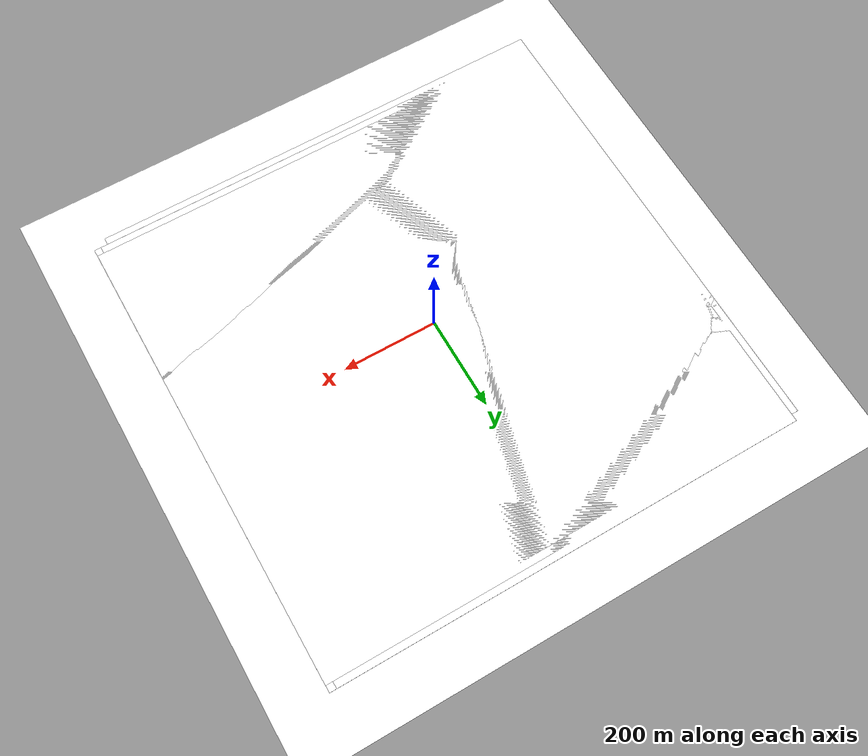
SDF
<sdf version="1.9">
 <world name="world_demo">
  <physics name="4ms" type="ignored">
   <max_step_size>0.0040000000000000001</max_step_size>
   <real_time_factor>1</real_time_factor>
   <real_time_update_rate>1000</real_time_update_rate>
  </physics>
  <plugin name="ignition::gazebo::systems::Physics" filename="ignition-gazebo-physics-system"/>
  <plugin name="ignition::gazebo::systems::SceneBroadcaster" filename="ignition-gazebo-scene-broadcaster-system"/>
  <plugin name="ignition::gazebo::systems::UserCommands" filename="ignition-gazebo-user-commands-system"/>
  <plugin name="ignition::gazebo::systems::Sensors" filename="ignition-gazebo-sensors-system">
   <render_engine>ogre2</render_engine>
  </plugin>
  <spherical_coordinates>
   <surface_model>EARTH_WGS84</surface_model>
   <world_frame_orientation>ENU</world_frame_orientation>
   <latitude_deg>38.775593600000001</latitude_deg>
   <longitude_deg>-9.1375554000000001</longitude_deg>
   <elevation>0</elevation>
   <heading_deg>0</heading_deg>
  </spherical_coordinates>
  <gravity>0 0 -9.8</gravity>
  <magnetic_field>6e-06 2.3e-05 -4.2e-05</magnetic_field>
  <atmosphere type="adiabatic"/>
  <scene><ambient>0.4 0.4 0.4 1</ambient><background>0.7 0.7 0.8 1</background><shadows>true</shadows></scene>
  <include>
   <uri>https://fuel.ignitionrobotics.org/1.0/hexarotor/models/grasspatch</uri>
   <name>grasspatch</name>
   <pose>2.71574 -2.80395 0 0 -0 0.006057</pose>
  </include>
  <include>
   <uri>https://fuel.ignitionrobotics.org/1.0/hexarotor/models/grasspatch</uri>
   <name>grasspatch_0</name>
   <pose>-12.2297 -2.64582 0 0 -0 0</pose>
  </include>
  <include>
   <uri>https://fuel.ignitionrobotics.org/1.0/hexarotor/models/grasspatch</uri>
   <name>grasspatch_1</name>
   <pose>2.62754 12.1062 0 0 -0 0</pose>
  </include>
  <include>
   <uri>https://fuel.ignitionrobotics.org/1.0/hexarotor/models/grasspatch</uri>
   <name>grasspatch_2</name>
   <pose>-12.0931 11.9289 0 0 -0 0</pose>
  </include>
  <include>
   <uri>https://fuel.ignitionrobotics.org/1.0/hexarotor/models/grasspatch</uri>
   <name>grasspatch_3</name>
   <pose>16.9776 12.1962 0 0 -0 0</pose>
  </include>
  <include>
   <uri>https://fuel.ignitionrobotics.org/1.0/hexarotor/models/grasspatch</uri>
   <name>grasspatch_4</name>
   <pose>2.28684 26.938 0 0 -0 0</pose>
  </include>
  <include>
   <uri>https://fuel.ignitionrobotics.org/1.0/hexarotor/models/grasspatch</uri>
   <name>grasspatch_5</name>
   <pose>16.5899 26.9995 0 0 -0 0</pose>
  </include>
  <light name="sun" type="directional">
   <pose>0 0 10 0 -0 0</pose>
   <intensity>1</intensity>
   <direction>-0.5 0.1 -0.9</direction>
   <diffuse>0.8 0.8 0.8 1</diffuse>
   <specular>0.2 0.2 0.2 1</specular>
   <attenuation>
    <range>1000</range>
    <linear>0.01</linear>
    <constant>0.90000000000000002</constant>
    <quadratic>0.001</quadratic>
   </attenuation>
   <spot><inner_angle>0</inner_angle><outer_angle>0</outer_angle><falloff>0</falloff></spot>
  </light>
  <plugin filename="libignition-gazebo-imu-system.so" name="ignition::gazebo::systems::Imu"/>
  <plugin filename="libignition-gazebo-contact-system.so" name="ignition::gazebo::systems::Contact"/>
  <model name="vehicle_blue" canonical_link="base_link">
   <frame name="lidar_frame" attached_to="base_link"><pose>0.8 0 0.5 0 0 0</pose></frame>
   <link name="base_link">
    <pose relative_to="__model__">0.5 0 0.2 0 0 0</pose>
    <inertial>
     <mass>1.14395</mass>
     <inertia>
      <ixx>0.095329</ixx>
      <ixy>0</ixy>
      <ixz>0</ixz>
      <iyy>0.381317</iyy>
      <iyz>0</iyz>
      <izz>0.476646</izz>
     </inertia>
    </inertial>
    <visual name="visual">
     <geometry><box><size>1.8 0.8 0.3</size></box></geometry>
     <material>
      <ambient>0.0 0.0 1.0 1</ambient>
      <diffuse>0.0 0.0 1.0 1</diffuse>
      <specular>0.0 0.0 1.0 1</specular>
     </material>
    </visual>
    <collision name="collision"><geometry><box><size>1.8 0.8 0.3</size></box></geometry></collision>
    <sensor name="imu_sensor" type="imu">
     <always_on>1</always_on>
     <update_rate>1</update_rate>
     <visualize>true</visualize>
     <topic>imu</topic>
    </sensor>
    <sensor name="gpu_lidar" type="gpu_lidar">
     <pose relative_to="lidar_frame">0 0 0 0 0 0</pose>
     <topic>lidar</topic>
     <update_rate>10</update_rate>
     <ray>
      <scan>
       <horizontal>
        <samples>640</samples>
        <resolution>1</resolution>
        <min_angle>-1.396263</min_angle>
        <max_angle>1.396263</max_angle>
       </horizontal>
       <vertical>
        <samples>1</samples>
        <resolution>0.01</resolution>
        <min_angle>0</min_angle>
        <max_angle>0</max_angle>
       </vertical>
      </scan>
      <range><min>0.08</min><max>10.0</max><resolution>0.01</resolution></range>
     </ray>
     <always_on>1</always_on>
     <visualize>true</visualize>
    </sensor>
   </link>
   <link name="camera_link">
    <pose relative_to="base_link">0.8 0.0 0.2 0 0 0</pose>
    <inertial>
     <mass>0.1</mass>
     <inertia><ixx>0.000166667</ixx><iyy>0.000166667</iyy><izz>0.000166667</izz></inertia>
    </inertial>
    <collision name="collision"><geometry><box><size>0.1 0.1 0.1</size></box></geometry></collision>
    <visual name="visual"><geometry><box><size>0.1 0.1 0.1</size></box></geometry></visual>
    <sensor name="camera" type="camera">
     <camera>
      <horizontal_fov>1.047</horizontal_fov>
      <image><width>380</width><height>240</height></image>
      <clip><near>0.1</near><far>100</far></clip>
     </camera>
     <always_on>1</always_on>
     <update_rate>30</update_rate>
     <visualize>true</visualize>
     <topic>camera</topic>
    </sensor>
   </link>
   <joint name="camera" type="fixed"><parent>base_link</parent><child>camera_link</child></joint>
   <link name="left_wheel1">
    <pose relative_to="base_link">-0.4 0.46 -0.05 -1.5707 0 0</pose>
    <inertial>
     <mass>1</mass>
     <inertia><ixx>0.043333</ixx><ixy>0</ixy><ixz>0</ixz><iyy>0.043333</iyy><iyz>0</iyz><izz>0.08</izz></inertia>
    </inertial>
    <visual name="visual">
     <geometry><cylinder><radius>0.15</radius><length>0.10</length></cylinder></geometry>
     <material>
      <ambient>1.0 0.0 0.0 1</ambient>
      <diffuse>1.0 0.0 0.0 1</diffuse>
      <specular>1.0 0.0 0.0 1</specular>
     </material>
    </visual>
    <collision name="collision">
     <geometry><cylinder><radius>0.15</radius><length>0.10</length></cylinder></geometry>
    </collision>
   </link>
   <link name="right_wheel1">
    <pose relative_to="base_link">-0.4 -0.46 -0.05 -1.5707 0 0</pose>
    <inertial>
     <mass>1</mass>
     <inertia><ixx>0.043333</ixx><ixy>0</ixy><ixz>0</ixz><iyy>0.043333</iyy><iyz>0</iyz><izz>0.08</izz></inertia>
    </inertial>
    <visual name="visual">
     <geometry><cylinder><radius>0.15</radius><length>0.10</length></cylinder></geometry>
     <material>
      <ambient>1.0 0.0 0.0 1</ambient>
      <diffuse>1.0 0.0 0.0 1</diffuse>
      <specular>1.0 0.0 0.0 1</specular>
     </material>
    </visual>
    <collision name="collision">
     <geometry><cylinder><radius>0.15</radius><length>0.10</length></cylinder></geometry>
    </collision>
   </link>
   <link name="right_wheel2">
    <pose relative_to="base_link">0.4 -0.46 -0.05 -1.5707 0 0</pose>
    <inertial>
     <mass>1</mass>
     <inertia><ixx>0.043333</ixx><ixy>0</ixy><ixz>0</ixz><iyy>0.043333</iyy><iyz>0</iyz><izz>0.08</izz></inertia>
    </inertial>
    <visual name="visual">
     <geometry><cylinder><radius>0.15</radius><length>0.10</length></cylinder></geometry>
     <material>
      <ambient>1.0 0.0 0.0 1</ambient>
      <diffuse>1.0 0.0 0.0 1</diffuse>
      <specular>1.0 0.0 0.0 1</specular>
     </material>
    </visual>
    <collision name="collision">
     <geometry><cylinder><radius>0.15</radius><length>0.10</length></cylinder></geometry>
    </collision>
   </link>
   <link name="left_wheel2">
    <pose relative_to="base_link">0.4 0.46 -0.05 -1.5707 0 0</pose>
    <inertial>
     <mass>1</mass>
     <inertia><ixx>0.043333</ixx><ixy>0</ixy><ixz>0</ixz><iyy>0.043333</iyy><iyz>0</iyz><izz>0.08</izz></inertia>
    </inertial>
    <visual name="visual">
     <geometry><cylinder><radius>0.15</radius><length>0.10</length></cylinder></geometry>
     <material>
      <ambient>1.0 0.0 0.0 1</ambient>
      <diffuse>1.0 0.0 0.0 1</diffuse>
      <specular>1.0 0.0 0.0 1</specular>
     </material>
    </visual>
    <collision name="collision">
     <geometry><cylinder><radius>0.15</radius><length>0.10</length></cylinder></geometry>
    </collision>
   </link>
   <joint name="left_wheel1_joint" type="revolute">
    <pose relative_to="left_wheel1"/>
    <parent>base_link</parent>
    <child>left_wheel1</child>
    <axis>
     <xyz expressed_in="__model__">0 1 0</xyz>
     <limit><lower>-1.79769e+308</lower><upper>1.79769e+308</upper></limit>
    </axis>
   </joint>
   <joint name="left_wheel2_joint" type="revolute">
    <pose relative_to="left_wheel2"/>
    <parent>base_link</parent>
    <child>left_wheel2</child>
    <axis>
     <xyz expressed_in="__model__">0 1 0</xyz>
     <limit><lower>-1.79769e+308</lower><upper>1.79769e+308</upper></limit>
    </axis>
   </joint>
   <joint name="right_wheel1_joint" type="revolute">
    <pose relative_to="right_wheel1"/>
    <parent>base_link</parent>
    <child>right_wheel1</child>
    <axis>
     <xyz expressed_in="__model__">0 1 0</xyz>
     <limit><lower>-1.79769e+308</lower><upper>1.79769e+308</upper></limit>
    </axis>
   </joint>
   <joint name="right_wheel2_joint" type="revolute">
    <pose relative_to="right_wheel2"/>
    <parent>base_link</parent>
    <child>right_wheel2</child>
    <axis>
     <xyz expressed_in="__model__">0 1 0</xyz>
     <limit><lower>-1.79769e+308</lower><upper>1.79769e+308</upper></limit>
    </axis>
   </joint>
   <plugin filename="libignition-gazebo-diff-drive-system.so" name="ignition::gazebo::systems::DiffDrive">
    <left_joint>left_wheel1_joint</left_joint>
    <left_joint>left_wheel2_joint</left_joint>
    <right_joint>right_wheel1_joint</right_joint>
    <right_joint>right_wheel2_joint</right_joint>
    <wheel_separation>0.92</wheel_separation>
    <wheel_radius>0.15</wheel_radius>
    <odom_publish_frequency>30</odom_publish_frequency>
    <topic>cmd_vel</topic>
    <odom_topic>odom</odom_topic>
    <odom_frame>odom</odom_frame>
    <base_link>base_link</base_link>
    <publish_tf>true</publish_tf>
   </plugin>
  </model>
 </world>
</sdf>

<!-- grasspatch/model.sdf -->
<sdf version='1.4'>
  <model name='grasspatch'>
    <static>true</static>
    <link name='link'>
      <collision name='collision'>
        <pose>0 0 0 0 0 0</pose>
        <geometry>
          <plane>
            <normal>0 0 1</normal>
            <size>1000 1000</size>
          </plane>
        </geometry>
        <surface>
          <friction>
            <ode>
              <mu>0.5</mu>
              <mu2>.5</mu2>
            </ode>
          </friction>
        </surface>
      </collision>

      <visual name='visual_s10'>
        <pose>0 0 0 0 0 0</pose>
        <cast_shadows>false</cast_shadows>
        <geometry>
          <plane>
            <normal>0 0 1</normal>
            <size>1000 1000</size>
          </plane>
        </geometry>
          <material>
         <diffuse>1.0 1.0 1.0</diffuse>
          <specular>1.0 1.0 1.0</specular>
		  <pbr>
			<metal>
			   <albedo_map>materials/textures/grass_dry.png</albedo_map>
			   <normal_map>materials/textures/grass_dry.png</normal_map>
			</metal>
		  </pbr>
		</material>
      </visual>

    </link>
  </model>
</sdf>
